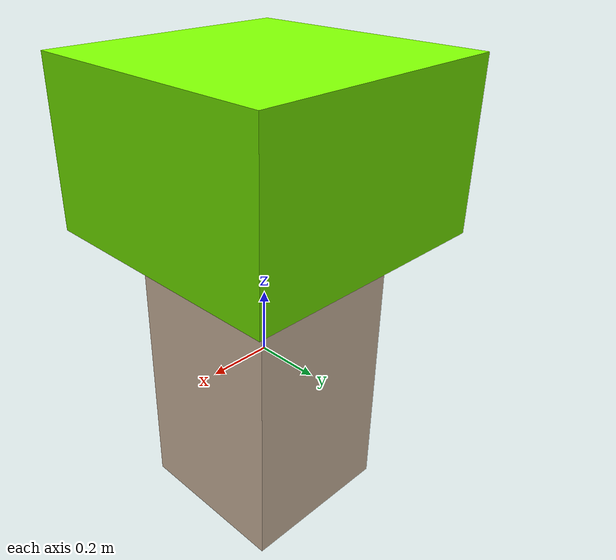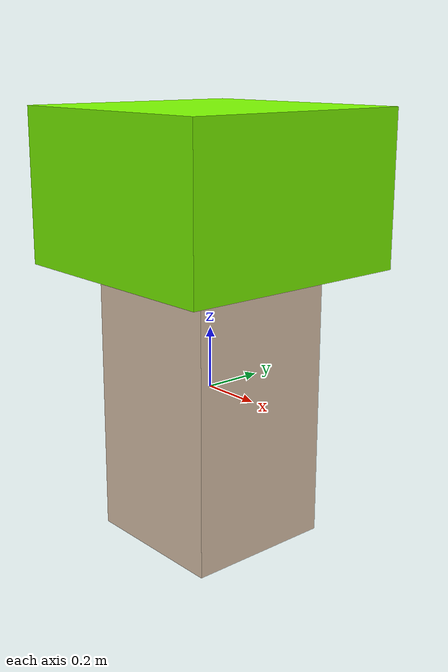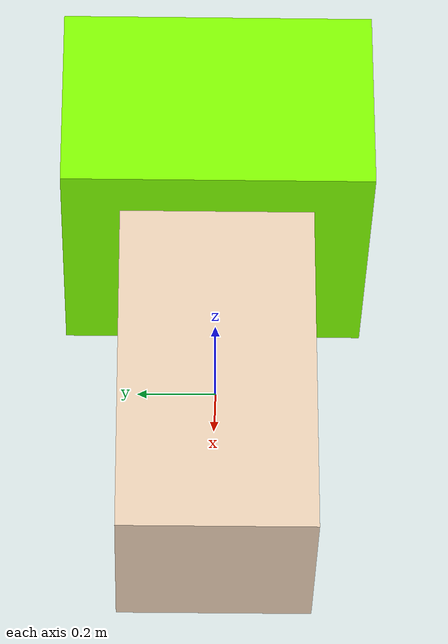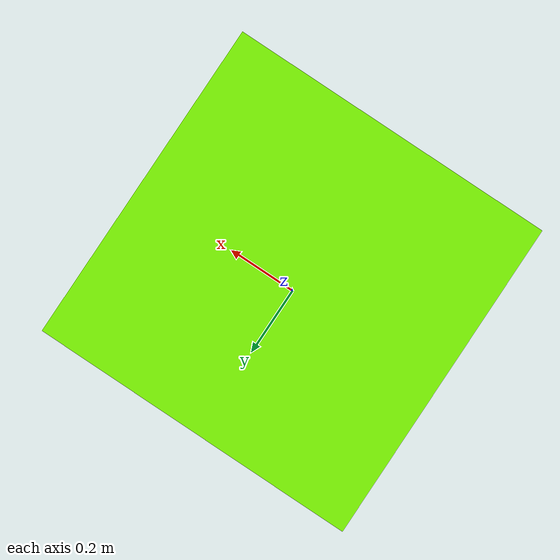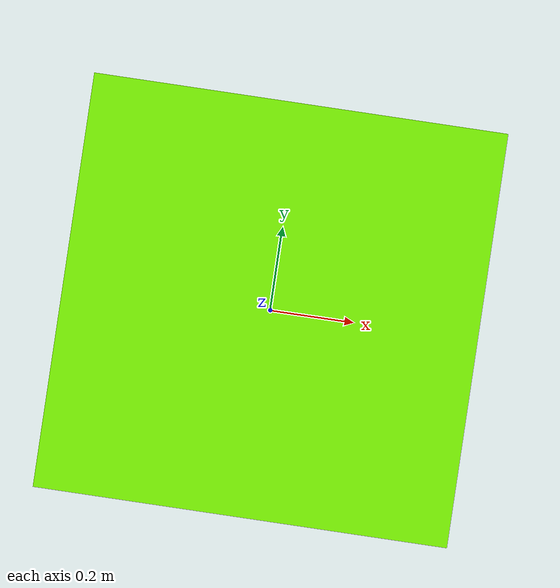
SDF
<?xml version="1.0"?>
<sdf version="1.7">
  <model name="tree_obstacle10">
    <link name="tree_body">
      <visual name="trunk_visual">
        <pose>0 0 0  0 0 0</pose>
        <geometry>
          <box>
            <size>0.5 0.5 1.0</size>
          </box>
        </geometry>
        <material>
          <diffuse>0.9 0.8 0.7 1.0</diffuse>
        </material>
      </visual>
      <collision name="trunk_collision">
        <pose>0 0 0  0 0 0</pose>
        <geometry>
          <box>
            <size>0.5 0.5 1.0</size>
          </box>
        </geometry>
      </collision>
      <visual name="treetop_visual">
        <pose>0  0  0.65 0 0 0</pose>
        <geometry>
          <box>
            <size>0.8 0.8 0.5</size>
          </box>
        </geometry>
        <material>
          <diffuse>0.5 1.0 0.0 1.0</diffuse>
        </material>
      </visual>
      <collision name="front_left_collision">
        <pose>0  0  0.65 0 0 0</pose>
        <geometry>
          <box>
            <size>0.8 0.8 0.5</size>
          </box>
        </geometry>
      </collision>
    </link>
  </model>
</sdf>
